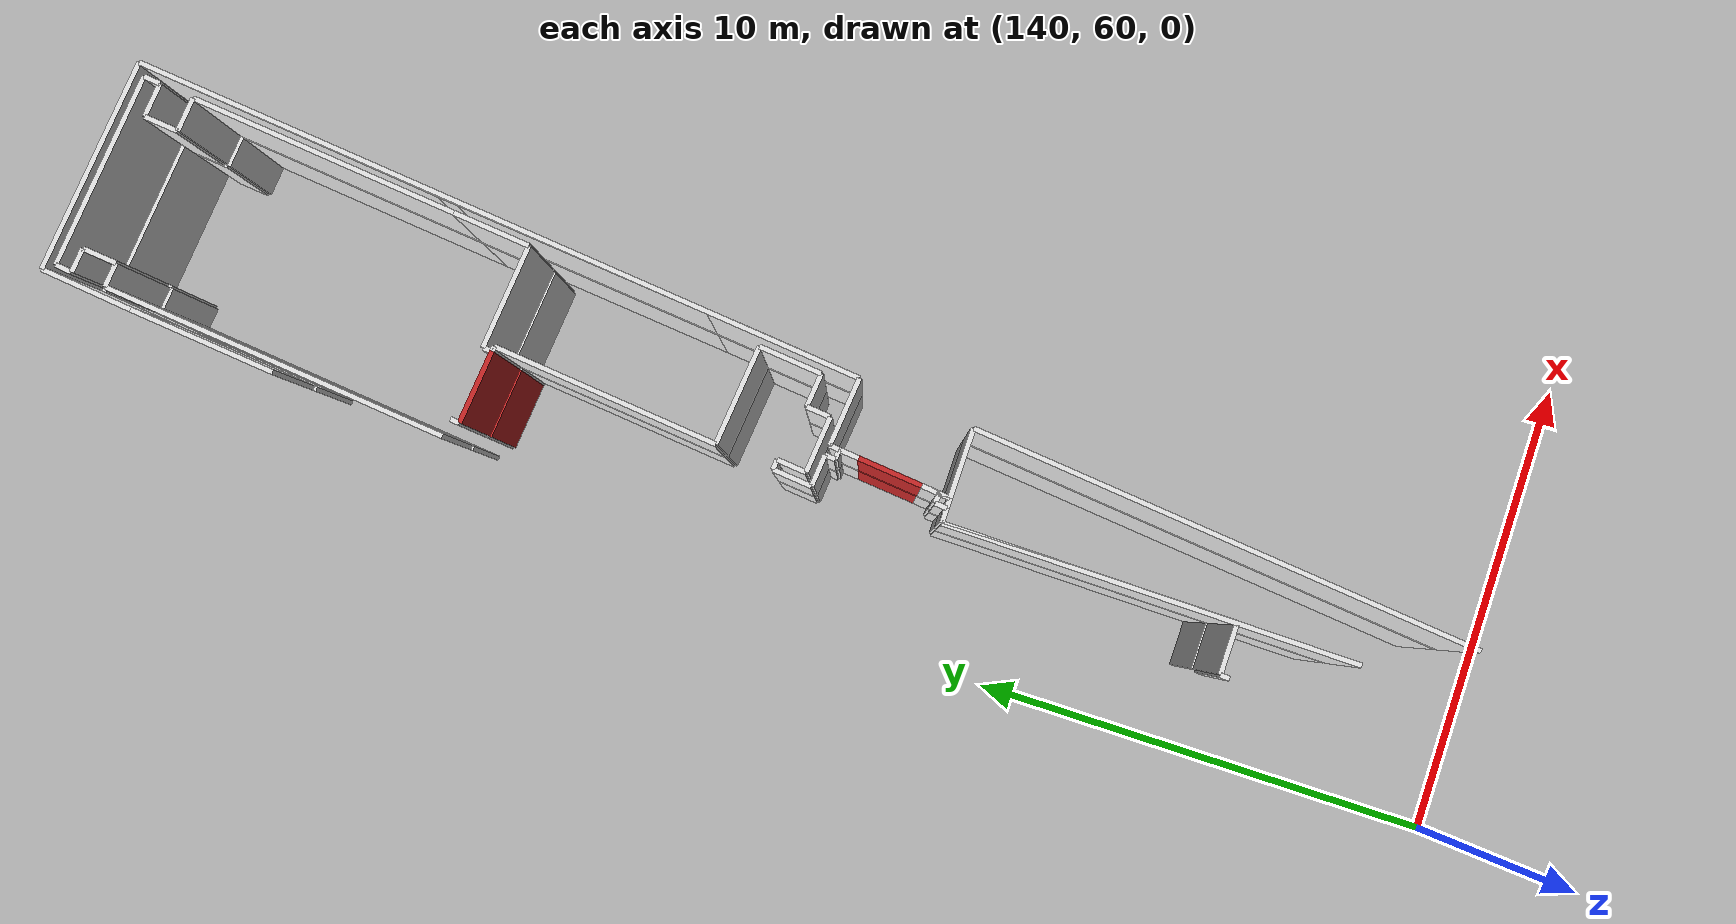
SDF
<sdf version="1.6">
 <world name="default">
  <model name="wall_142.5_81.3_0.0">
   <static>true</static>
   <pose>142.54999999998836 81.33499999996275 1.5 0 0 -0.09966865273705577</pose>
   <link name="link">
    <visual name="visual">
     <geometry><box><size>1.5074813432052014 0.1 3</size></box></geometry>
     <material>
      <script><uri>file://media/materials/scripts/gazebo.material</uri><name>Gazebo/Red</name></script>
     </material>
    </visual>
   </link>
  </model>
  <model name="wall_143.5_73.3_0.0">
   <static>true</static>
   <pose>143.4550000000163 73.29500000015832 1.5 0 0 1.4718835320591757</pose>
   <link name="link">
    <visual name="visual">
     <geometry><box><size>1.3164345787571878 0.1 3</size></box></geometry>
     <material>
      <script><uri>file://media/materials/scripts/gazebo.material</uri><name>Gazebo/Red</name></script>
     </material>
    </visual>
   </link>
  </model>
  <model name="wall_142.9_75.4_0.0">
   <static>true</static>
   <pose>142.9100000000035 75.42999999993481 1.5 0 0 -0.09966865257760905</pose>
   <link name="link">
    <visual name="visual">
     <geometry><box><size>0.20099751243585498 0.1 3</size></box></geometry>
     <material>
      <script><uri>file://media/materials/scripts/gazebo.material</uri><name>Gazebo/White</name></script>
     </material>
    </visual>
   </link>
  </model>
  <model name="wall_143.0_75.1_0.0">
   <static>true</static>
   <pose>142.98000000001048 75.11999999987893 1.5 0 0 -1.6704649792668482</pose>
   <link name="link">
    <visual name="visual">
     <geometry><box><size>0.6029925373596918 0.1 3</size></box></geometry>
     <material>
      <script><uri>file://media/materials/scripts/gazebo.material</uri><name>Gazebo/White</name></script>
     </material>
    </visual>
   </link>
  </model>
  <model name="wall_143.5_74.8_0.0">
   <static>true</static>
   <pose>143.52499999999418 74.76499999989755 1.5 0 0 -0.09536204679293706</pose>
   <link name="link">
    <visual name="visual">
     <geometry><box><size>1.1552488908849852 0.1 3</size></box></geometry>
     <material>
      <script><uri>file://media/materials/scripts/gazebo.material</uri><name>Gazebo/White</name></script>
     </material>
    </visual>
   </link>
  </model>
  <model name="wall_144.1_75.0_0.0">
   <static>true</static>
   <pose>144.125 74.9550000000745 1.5 0 0 1.469107474983833</pose>
   <link name="link">
    <visual name="visual">
     <geometry><box><size>0.4925444144680799 0.1 3</size></box></geometry>
     <material>
      <script><uri>file://media/materials/scripts/gazebo.material</uri><name>Gazebo/White</name></script>
     </material>
    </visual>
   </link>
  </model>
  <model name="wall_144.5_75.2_0.0">
   <static>true</static>
   <pose>144.49500000002445 75.16500000003725 1.5 0 0 -0.10110337216347741</pose>
   <link name="link">
    <visual name="visual">
     <geometry><box><size>0.6935416354083843 0.1 3</size></box></geometry>
     <material>
      <script><uri>file://media/materials/scripts/gazebo.material</uri><name>Gazebo/White</name></script>
     </material>
    </visual>
   </link>
  </model>
  <model name="wall_144.9_75.8_0.0">
   <static>true</static>
   <pose>144.90499999999884 75.77499999990687 1.5 0 0 1.4703602147900217</pose>
   <link name="link">
    <visual name="visual">
     <geometry><box><size>1.2965338407007314 0.1 3</size></box></geometry>
     <material>
      <script><uri>file://media/materials/scripts/gazebo.material</uri><name>Gazebo/White</name></script>
     </material>
    </visual>
   </link>
  </model>
  <model name="wall_143.9_76.5_0.0">
   <static>true</static>
   <pose>143.94999999998254 76.52499999990687 1.5 0 0 3.039012801188522</pose>
   <link name="link">
    <visual name="visual">
     <geometry><box><size>2.050780339260853 0.1 3</size></box></geometry>
     <material>
      <script><uri>file://media/materials/scripts/gazebo.material</uri><name>Gazebo/White</name></script>
     </material>
    </visual>
   </link>
  </model>
  <model name="wall_143.2_78.9_0.0">
   <static>true</static>
   <pose>143.16500000000815 78.93999999994412 1.5 0 0 1.4694135127045715</pose>
   <link name="link">
    <visual name="visual">
     <geometry><box><size>4.6438453894440865 0.1 3</size></box></geometry>
     <material>
      <script><uri>file://media/materials/scripts/gazebo.material</uri><name>Gazebo/White</name></script>
     </material>
    </visual>
   </link>
  </model>
  <model name="wall_143.4_81.3_0.0">
   <static>true</static>
   <pose>143.35000000000582 81.25499999988824 1.5 0 0 3.041924003346254</pose>
   <link name="link">
    <visual name="visual">
     <geometry><box><size>0.10049875622371936 0.1 3</size></box></geometry>
     <material>
      <script><uri>file://media/materials/scripts/gazebo.material</uri><name>Gazebo/White</name></script>
     </material>
    </visual>
   </link>
  </model>
  <model name="wall_142.2_66.2_0.0">
   <static>true</static>
   <pose>142.2399999999907 66.15500000002794 1.5 0 0 -0.009615088532167242</pose>
   <link name="link">
    <visual name="visual">
     <geometry><box><size>1.0400480758514623 0.1 3</size></box></geometry>
     <material>
      <script><uri>file://media/materials/scripts/gazebo.material</uri><name>Gazebo/White</name></script>
     </material>
    </visual>
   </link>
  </model>
  <model name="wall_142.8_69.1_0.0">
   <static>true</static>
   <pose>142.7950000000128 69.10499999998137 1.5 0 0 1.5589525489794016</pose>
   <link name="link">
    <visual name="visual">
     <geometry><box><size>5.910414537218375 0.1 3</size></box></geometry>
     <material>
      <script><uri>file://media/materials/scripts/gazebo.material</uri><name>Gazebo/White</name></script>
     </material>
    </visual>
   </link>
  </model>
  <model name="wall_143.0_72.1_0.0">
   <static>true</static>
   <pose>142.98000000001048 72.06000000005588 1.5 0 0 0.0</pose>
   <link name="link">
    <visual name="visual">
     <geometry><box><size>0.29999999998835847 0.1 3</size></box></geometry>
     <material>
      <script><uri>file://media/materials/scripts/gazebo.material</uri><name>Gazebo/White</name></script>
     </material>
    </visual>
   </link>
  </model>
  <model name="wall_143.1_72.2_0.0">
   <static>true</static>
   <pose>143.14000000001397 72.17999999993481 1.5 0 0 1.4876550947458824</pose>
   <link name="link">
    <visual name="visual">
     <geometry><box><size>0.24083189133608532 0.1 3</size></box></geometry>
     <material>
      <script><uri>file://media/materials/scripts/gazebo.material</uri><name>Gazebo/White</name></script>
     </material>
    </visual>
   </link>
  </model>
  <model name="wall_143.2_72.3_0.0">
   <static>true</static>
   <pose>143.25 72.28999999980442 1.5 0 0 -0.09966865260642473</pose>
   <link name="link">
    <visual name="visual">
     <geometry><box><size>0.20099751237793617 0.1 3</size></box></geometry>
     <material>
      <script><uri>file://media/materials/scripts/gazebo.material</uri><name>Gazebo/White</name></script>
     </material>
    </visual>
   </link>
  </model>
  <model name="wall_143.4_72.5_0.0">
   <static>true</static>
   <pose>143.36999999999534 72.45999999996275 1.5 0 0 1.460139105621001</pose>
   <link name="link">
    <visual name="visual">
     <geometry><box><size>0.36221540586283607 0.1 3</size></box></geometry>
     <material>
      <script><uri>file://media/materials/scripts/gazebo.material</uri><name>Gazebo/White</name></script>
     </material>
    </visual>
   </link>
  </model>
  <model name="wall_143.5_74.2_0.0">
   <static>true</static>
   <pose>143.54000000000815 74.15500000002794 1.5 0 0 1.4735431285193206</pose>
   <link name="link">
    <visual name="visual">
     <geometry><box><size>0.41194659816373147 0.1 3</size></box></geometry>
     <material>
      <script><uri>file://media/materials/scripts/gazebo.material</uri><name>Gazebo/White</name></script>
     </material>
    </visual>
   </link>
  </model>
  <model name="wall_143.5_74.4_0.0">
   <static>true</static>
   <pose>143.45999999999185 74.36499999999069 1.5 0 0 3.0916342566630535</pose>
   <link name="link">
    <visual name="visual">
     <geometry><box><size>0.20024984396872697 0.1 3</size></box></geometry>
     <material>
      <script><uri>file://media/materials/scripts/gazebo.material</uri><name>Gazebo/White</name></script>
     </material>
    </visual>
   </link>
  </model>
  <model name="wall_143.4_74.5_0.0">
   <static>true</static>
   <pose>143.36999999999534 74.47500000009313 1.5 0 0 1.4758446203474973</pose>
   <link name="link">
    <visual name="visual">
     <geometry><box><size>0.21095023106197072 0.1 3</size></box></geometry>
     <material>
      <script><uri>file://media/materials/scripts/gazebo.material</uri><name>Gazebo/White</name></script>
     </material>
    </visual>
   </link>
  </model>
  <model name="wall_143.1_74.6_0.0">
   <static>true</static>
   <pose>143.05499999999302 74.61000000010245 1.5 0 0 3.0495458046444233</pose>
   <link name="link">
    <visual name="visual">
     <geometry><box><size>0.6527633568430243 0.1 3</size></box></geometry>
     <material>
      <script><uri>file://media/materials/scripts/gazebo.material</uri><name>Gazebo/White</name></script>
     </material>
    </visual>
   </link>
  </model>
  <model name="wall_142.8_75.0_0.0">
   <static>true</static>
   <pose>142.76999999998952 75.04000000003725 1.5 0 0 1.471127674260511</pose>
   <link name="link">
    <visual name="visual">
     <geometry><box><size>0.8039900495059528 0.1 3</size></box></geometry>
     <material>
      <script><uri>file://media/materials/scripts/gazebo.material</uri><name>Gazebo/White</name></script>
     </material>
    </visual>
   </link>
  </model>
  <model name="wall_143.3_81.4_0.0">
   <static>true</static>
   <pose>143.30499999999302 81.35499999998137 1.5 0 0 1.5182132652482727</pose>
   <link name="link">
    <visual name="visual">
     <geometry><box><size>0.19026297631410952 0.1 3</size></box></geometry>
     <material>
      <script><uri>file://media/materials/scripts/gazebo.material</uri><name>Gazebo/White</name></script>
     </material>
    </visual>
   </link>
  </model>
  <model name="wall_144.4_81.3_0.0">
   <static>true</static>
   <pose>144.38000000000466 81.34500000020489 1.5 0 0 -0.0978176596774659</pose>
   <link name="link">
    <visual name="visual">
     <geometry><box><size>2.1502790516684445 0.1 3</size></box></geometry>
     <material>
      <script><uri>file://media/materials/scripts/gazebo.material</uri><name>Gazebo/White</name></script>
     </material>
    </visual>
   </link>
  </model>
  <model name="wall_145.5_82.0_0.0">
   <static>true</static>
   <pose>145.52999999999884 82.03000000002794 1.5 0 0 1.4698745421188324</pose>
   <link name="link">
    <visual name="visual">
     <geometry><box><size>1.5880806020966798 0.1 3</size></box></geometry>
     <material>
      <script><uri>file://media/materials/scripts/gazebo.material</uri><name>Gazebo/White</name></script>
     </material>
    </visual>
   </link>
  </model>
  <model name="wall_145.9_85.6_0.0">
   <static>true</static>
   <pose>145.88999999998487 85.56999999983236 1.5 0 0 1.4693278202361642</pose>
   <link name="link">
    <visual name="visual">
     <geometry><box><size>5.528435583417554 0.1 3</size></box></geometry>
     <material>
      <script><uri>file://media/materials/scripts/gazebo.material</uri><name>Gazebo/White</name></script>
     </material>
    </visual>
   </link>
  </model>
  <model name="wall_145.8_88.4_0.0">
   <static>true</static>
   <pose>145.81999999997788 88.35499999998137 1.5 0 0 3.041924000678746</pose>
   <link name="link">
    <visual name="visual">
     <geometry><box><size>0.7034912935197005 0.1 3</size></box></geometry>
     <material>
      <script><uri>file://media/materials/scripts/gazebo.material</uri><name>Gazebo/White</name></script>
     </material>
    </visual>
   </link>
  </model>
  <model name="wall_145.5_88.7_0.0">
   <static>true</static>
   <pose>145.50499999997555 88.73999999999069 1.5 0 0 1.4711276742543362</pose>
   <link name="link">
    <visual name="visual">
     <geometry><box><size>0.7034912932011471 0.1 3</size></box></geometry>
     <material>
      <script><uri>file://media/materials/scripts/gazebo.material</uri><name>Gazebo/White</name></script>
     </material>
    </visual>
   </link>
  </model>
  <model name="wall_145.9_89.1_0.0">
   <static>true</static>
   <pose>145.88999999998487 89.05499999993481 1.5 0 0 -0.0996686522524036</pose>
   <link name="link">
    <visual name="visual">
     <geometry><box><size>0.7034912934733655 0.1 3</size></box></geometry>
     <material>
      <script><uri>file://media/materials/scripts/gazebo.material</uri><name>Gazebo/White</name></script>
     </material>
    </visual>
   </link>
  </model>
  <model name="wall_146.3_89.2_0.0">
   <static>true</static>
   <pose>146.2600000000093 89.18999999994412 1.5 0 0 1.4536875820691035</pose>
   <link name="link">
    <visual name="visual">
     <geometry><box><size>0.3423448552288355 0.1 3</size></box></geometry>
     <material>
      <script><uri>file://media/materials/scripts/gazebo.material</uri><name>Gazebo/White</name></script>
     </material>
    </visual>
   </link>
  </model>
  <model name="wall_144.3_89.6_0.0">
   <static>true</static>
   <pose>144.2850000000035 89.55999999982305 1.5 0 0 3.041675862170233</pose>
   <link name="link">
    <visual name="visual">
     <geometry><box><size>4.01000000003936 0.1 3</size></box></geometry>
     <material>
      <script><uri>file://media/materials/scripts/gazebo.material</uri><name>Gazebo/White</name></script>
     </material>
    </visual>
   </link>
  </model>
  <model name="wall_142.3_89.6_0.0">
   <static>true</static>
   <pose>142.26999999998952 89.58999999985099 1.5 0 0 -1.6879050713518278</pose>
   <link name="link">
    <visual name="visual">
     <geometry><box><size>0.34234485522203445 0.1 3</size></box></geometry>
     <material>
      <script><uri>file://media/materials/scripts/gazebo.material</uri><name>Gazebo/White</name></script>
     </material>
    </visual>
   </link>
  </model>
  <model name="wall_142.5_89.4_0.0">
   <static>true</static>
   <pose>142.5 89.39500000001863 1.5 0 0 -0.0996686521223214</pose>
   <link name="link">
    <visual name="visual">
     <geometry><box><size>0.5024937810375105 0.1 3</size></box></geometry>
     <material>
      <script><uri>file://media/materials/scripts/gazebo.material</uri><name>Gazebo/White</name></script>
     </material>
    </visual>
   </link>
  </model>
  <model name="wall_142.7_89.0_0.0">
   <static>true</static>
   <pose>142.7149999999965 89.02000000001863 1.5 0 0 -1.6704649792695925</pose>
   <link name="link">
    <visual name="visual">
     <geometry><box><size>0.7034912936644975 0.1 3</size></box></geometry>
     <material>
      <script><uri>file://media/materials/scripts/gazebo.material</uri><name>Gazebo/White</name></script>
     </material>
    </visual>
   </link>
  </model>
  <model name="wall_142.4_88.7_0.0">
   <static>true</static>
   <pose>142.42999999999302 88.69500000006519 1.5 0 0 3.0419240005453703</pose>
   <link name="link">
    <visual name="visual">
     <geometry><box><size>0.5024937810838455 0.1 3</size></box></geometry>
     <material>
      <script><uri>file://media/materials/scripts/gazebo.material</uri><name>Gazebo/White</name></script>
     </material>
    </visual>
   </link>
  </model>
  <model name="wall_141.8_85.2_0.0">
   <static>true</static>
   <pose>141.82000000000698 85.18000000016764 1.5 0 0 -1.6721428300555992</pose>
   <link name="link">
    <visual name="visual">
     <geometry><box><size>7.1165160015990105 0.1 3</size></box></geometry>
     <material>
      <script><uri>file://media/materials/scripts/gazebo.material</uri><name>Gazebo/White</name></script>
     </material>
    </visual>
   </link>
  </model>
  <model name="wall_141.8_81.5_0.0">
   <static>true</static>
   <pose>141.80999999999767 81.50500000012107 1.5 0 0 -1.675673265652709</pose>
   <link name="link">
    <visual name="visual">
     <geometry><box><size>0.19104973169180559 0.1 3</size></box></geometry>
     <material>
      <script><uri>file://media/materials/scripts/gazebo.material</uri><name>Gazebo/White</name></script>
     </material>
    </visual>
   </link>
  </model>
  <model name="wall_141.8_86.6_0.0">
   <static>true</static>
   <pose>141.76999999998952 86.61499999999069 1.5 0 0 1.4707965484838321</pose>
   <link name="link">
    <visual name="visual">
     <geometry><box><size>3.005012478933323 0.1 3</size></box></geometry>
     <material>
      <script><uri>file://media/materials/scripts/gazebo.material</uri><name>Gazebo/White</name></script>
     </material>
    </visual>
   </link>
  </model>
  <model name="wall_144.2_66.8_0.0">
   <static>true</static>
   <pose>144.20999999999185 66.81499999994412 1.5 0 0 1.469706682461873</pose>
   <link name="link">
    <visual name="visual">
     <geometry><box><size>10.503623184591495 0.1 3</size></box></geometry>
     <material>
      <script><uri>file://media/materials/scripts/gazebo.material</uri><name>Gazebo/White</name></script>
     </material>
    </visual>
   </link>
  </model>
  <model name="wall_144.0_72.1_0.0">
   <static>true</static>
   <pose>144.0350000000035 72.05000000004657 1.5 0 0 3.1274092075850195</pose>
   <link name="link">
    <visual name="visual">
     <geometry><box><size>1.4101418368123546 0.1 3</size></box></geometry>
     <material>
      <script><uri>file://media/materials/scripts/gazebo.material</uri><name>Gazebo/White</name></script>
     </material>
    </visual>
   </link>
  </model>
  <model name="wall_143.3_72.2_0.0">
   <static>true</static>
   <pose>143.3399999999965 72.1699999999255 1.5 0 0 1.4801364396657184</pose>
   <link name="link">
    <visual name="visual">
     <geometry><box><size>0.22090722008046232 0.1 3</size></box></geometry>
     <material>
      <script><uri>file://media/materials/scripts/gazebo.material</uri><name>Gazebo/White</name></script>
     </material>
    </visual>
   </link>
  </model>
  <model name="wall_143.6_74.5_0.0">
   <static>true</static>
   <pose>143.57000000000698 74.45499999984168 1.5 0 0 1.4659193879370842</pose>
   <link name="link">
    <visual name="visual">
     <geometry><box><size>0.19104973169180559 0.1 3</size></box></geometry>
     <material>
      <script><uri>file://media/materials/scripts/gazebo.material</uri><name>Gazebo/White</name></script>
     </material>
    </visual>
   </link>
  </model>
  <model name="wall_144.3_74.5_0.0">
   <static>true</static>
   <pose>144.27999999999884 74.47999999998137 1.5 0 0 -0.09966865225652011</pose>
   <link name="link">
    <visual name="visual">
     <geometry><box><size>1.4069825868888122 0.1 3</size></box></geometry>
     <material>
      <script><uri>file://media/materials/scripts/gazebo.material</uri><name>Gazebo/White</name></script>
     </material>
    </visual>
   </link>
  </model>
  <model name="wall_145.1_75.3_0.0">
   <static>true</static>
   <pose>145.06999999997788 75.2750000001397 1.5 0 0 1.4671231190540195</pose>
   <link name="link">
    <visual name="visual">
     <geometry><box><size>1.7393389548713725 0.1 3</size></box></geometry>
     <material>
      <script><uri>file://media/materials/scripts/gazebo.material</uri><name>Gazebo/White</name></script>
     </material>
    </visual>
   </link>
  </model>
  <model name="wall_145.5_79.5_0.0">
   <static>true</static>
   <pose>145.48499999998603 79.46999999997206 1.5 0 0 1.473506851962698</pose>
   <link name="link">
    <visual name="visual">
     <geometry><box><size>6.691644042820307 0.1 3</size></box></geometry>
     <material>
      <script><uri>file://media/materials/scripts/gazebo.material</uri><name>Gazebo/White</name></script>
     </material>
    </visual>
   </link>
  </model>
  <model name="wall_145.8_83.0_0.0">
   <static>true</static>
   <pose>145.8299999999872 83.01000000000931 1.5 0 0 1.4758446205894842</pose>
   <link name="link">
    <visual name="visual">
     <geometry><box><size>0.42190046258198655 0.1 3</size></box></geometry>
     <material>
      <script><uri>file://media/materials/scripts/gazebo.material</uri><name>Gazebo/White</name></script>
     </material>
    </visual>
   </link>
  </model>
  <model name="wall_146.2_86.4_0.0">
   <static>true</static>
   <pose>146.17999999999302 86.38000000012107 1.5 0 0 1.4667431110995115</pose>
   <link name="link">
    <visual name="visual">
     <geometry><box><size>6.354368575863701 0.1 3</size></box></geometry>
     <material>
      <script><uri>file://media/materials/scripts/gazebo.material</uri><name>Gazebo/White</name></script>
     </material>
    </visual>
   </link>
  </model>
  <model name="wall_144.3_89.8_0.0">
   <static>true</static>
   <pose>144.32000000000698 89.76500000013039 1.5 0 0 3.0392121432977204</pose>
   <link name="link">
    <visual name="visual">
     <geometry><box><size>4.403055757108741 0.1 3</size></box></geometry>
     <material>
      <script><uri>file://media/materials/scripts/gazebo.material</uri><name>Gazebo/White</name></script>
     </material>
    </visual>
   </link>
  </model>
  <model name="wall_142.0_89.1_0.0">
   <static>true</static>
   <pose>142.02499999999418 89.05000000004657 1.5 0 0 -1.682037319054423</pose>
   <link name="link">
    <visual name="visual">
     <geometry><box><size>1.8916923643498365 0.1 3</size></box></geometry>
     <material>
      <script><uri>file://media/materials/scripts/gazebo.material</uri><name>Gazebo/White</name></script>
     </material>
    </visual>
   </link>
  </model>
  <model name="wall_145.7_82.0_0.0">
   <static>true</static>
   <pose>145.74499999999534 81.97500000009313 1.5 0 0 -1.6715773258821318</pose>
   <link name="link">
    <visual name="visual">
     <geometry><box><size>15.2071627858948 0.1 3</size></box></geometry>
     <material>
      <script><uri>file://media/materials/scripts/gazebo.material</uri><name>Gazebo/White</name></script>
     </material>
    </visual>
   </link>
  </model>
  <model name="wall_143.4_72.4_0.0">
   <static>true</static>
   <pose>143.36000000001513 72.35000000009313 1.5 0 0 -1.673877935300477</pose>
   <link name="link">
    <visual name="visual">
     <geometry><box><size>0.5830951895584008 0.1 3</size></box></geometry>
     <material>
      <script><uri>file://media/materials/scripts/gazebo.material</uri><name>Gazebo/White</name></script>
     </material>
    </visual>
   </link>
  </model>
  <model name="wall_143.1_72.1_0.0">
   <static>true</static>
   <pose>143.0800000000163 72.06000000005588 1.5 0 0 3.141592653589793</pose>
   <link name="link">
    <visual name="visual">
     <geometry><box><size>0.5 0.1 3</size></box></geometry>
     <material>
      <script><uri>file://media/materials/scripts/gazebo.material</uri><name>Gazebo/White</name></script>
     </material>
    </visual>
   </link>
  </model>
  <model name="wall_142.8_67.9_0.0">
   <static>true</static>
   <pose>142.77499999999418 67.86000000010245 1.5 0 0 -1.5838908164257817</pose>
   <link name="link">
    <visual name="visual">
     <geometry><box><size>8.400720207127787 0.1 3</size></box></geometry>
     <material>
      <script><uri>file://media/materials/scripts/gazebo.material</uri><name>Gazebo/White</name></script>
     </material>
    </visual>
   </link>
  </model>
  <model name="wall_142.5_81.3_3.2">
   <static>true</static>
   <pose>142.54999999998836 81.33499999996275 4.7 0 0 -0.09966865273705577</pose>
   <link name="link">
    <visual name="visual">
     <geometry><box><size>1.5074813432052014 0.1 3</size></box></geometry>
     <material>
      <script><uri>file://media/materials/scripts/gazebo.material</uri><name>Gazebo/Red</name></script>
     </material>
    </visual>
   </link>
  </model>
  <model name="wall_143.5_73.3_3.2">
   <static>true</static>
   <pose>143.4550000000163 73.29500000015832 4.7 0 0 1.4718835320591757</pose>
   <link name="link">
    <visual name="visual">
     <geometry><box><size>1.3164345787571878 0.1 3</size></box></geometry>
     <material>
      <script><uri>file://media/materials/scripts/gazebo.material</uri><name>Gazebo/Red</name></script>
     </material>
    </visual>
   </link>
  </model>
  <model name="wall_142.9_75.4_3.2">
   <static>true</static>
   <pose>142.9100000000035 75.42999999993481 4.7 0 0 -0.09966865257760905</pose>
   <link name="link">
    <visual name="visual">
     <geometry><box><size>0.20099751243585498 0.1 3</size></box></geometry>
     <material>
      <script><uri>file://media/materials/scripts/gazebo.material</uri><name>Gazebo/White</name></script>
     </material>
    </visual>
   </link>
  </model>
  <model name="wall_143.0_75.1_3.2">
   <static>true</static>
   <pose>142.98000000001048 75.11999999987893 4.7 0 0 -1.6704649792668482</pose>
   <link name="link">
    <visual name="visual">
     <geometry><box><size>0.6029925373596918 0.1 3</size></box></geometry>
     <material>
      <script><uri>file://media/materials/scripts/gazebo.material</uri><name>Gazebo/White</name></script>
     </material>
    </visual>
   </link>
  </model>
  <model name="wall_143.5_74.8_3.2">
   <static>true</static>
   <pose>143.52499999999418 74.76499999989755 4.7 0 0 -0.09536204679293706</pose>
   <link name="link">
    <visual name="visual">
     <geometry><box><size>1.1552488908849852 0.1 3</size></box></geometry>
     <material>
      <script><uri>file://media/materials/scripts/gazebo.material</uri><name>Gazebo/White</name></script>
     </material>
    </visual>
   </link>
  </model>
  <model name="wall_144.1_75.0_3.2">
   <static>true</static>
   <pose>144.125 74.9550000000745 4.7 0 0 1.469107474983833</pose>
   <link name="link">
    <visual name="visual">
     <geometry><box><size>0.4925444144680799 0.1 3</size></box></geometry>
     <material>
      <script><uri>file://media/materials/scripts/gazebo.material</uri><name>Gazebo/White</name></script>
     </material>
    </visual>
   </link>
  </model>
  <model name="wall_144.5_75.2_3.2">
   <static>true</static>
   <pose>144.49500000002445 75.16500000003725 4.7 0 0 -0.10110337216347741</pose>
   <link name="link">
    <visual name="visual">
     <geometry><box><size>0.6935416354083843 0.1 3</size></box></geometry>
     <material>
      <script><uri>file://media/materials/scripts/gazebo.material</uri><name>Gazebo/White</name></script>
     </material>
    </visual>
   </link>
  </model>
  <model name="wall_144.9_75.8_3.2">
   <static>true</static>
   <pose>144.90499999999884 75.77499999990687 4.7 0 0 1.4703602147900217</pose>
   <link name="link">
    <visual name="visual">
     <geometry><box><size>1.2965338407007314 0.1 3</size></box></geometry>
     <material>
      <script><uri>file://media/materials/scripts/gazebo.material</uri><name>Gazebo/White</name></script>
     </material>
    </visual>
   </link>
  </model>
  <model name="wall_143.9_76.5_3.2">
   <static>true</static>
   <pose>143.94999999998254 76.52499999990687 4.7 0 0 3.039012801188522</pose>
   <link name="link">
    <visual name="visual">
     <geometry><box><size>2.050780339260853 0.1 3</size></box></geometry>
     <material>
      <script><uri>file://media/materials/scripts/gazebo.material</uri><name>Gazebo/White</name></script>
     </material>
    </visual>
   </link>
  </model>
  <model name="wall_143.2_78.9_3.2">
   <static>true</static>
   <pose>143.16500000000815 78.93999999994412 4.7 0 0 1.4694135127045715</pose>
   <link name="link">
    <visual name="visual">
     <geometry><box><size>4.6438453894440865 0.1 3</size></box></geometry>
     <material>
      <script><uri>file://media/materials/scripts/gazebo.material</uri><name>Gazebo/White</name></script>
     </material>
    </visual>
   </link>
  </model>
  <model name="wall_143.4_81.3_3.2">
   <static>true</static>
   <pose>143.35000000000582 81.25499999988824 4.7 0 0 3.041924003346254</pose>
   <link name="link">
    <visual name="visual">
     <geometry><box><size>0.10049875622371936 0.1 3</size></box></geometry>
     <material>
      <script><uri>file://media/materials/scripts/gazebo.material</uri><name>Gazebo/White</name></script>
     </material>
    </visual>
   </link>
  </model>
  <model name="wall_141.7_66.1_3.2">
   <static>true</static>
   <pose>141.7149999999965 66.06500000017695 4.7 0 0 1.5182132654251468</pose>
   <link name="link">
    <visual name="visual">
     <geometry><box><size>0.19026297584603252 0.1 3</size></box></geometry>
     <material>
      <script><uri>file://media/materials/scripts/gazebo.material</uri><name>Gazebo/White</name></script>
     </material>
    </visual>
   </link>
  </model>
  <model name="wall_142.2_66.2_3.2">
   <static>true</static>
   <pose>142.2399999999907 66.15500000002794 4.7 0 0 -0.009615088532167242</pose>
   <link name="link">
    <visual name="visual">
     <geometry><box><size>1.0400480758514623 0.1 3</size></box></geometry>
     <material>
      <script><uri>file://media/materials/scripts/gazebo.material</uri><name>Gazebo/White</name></script>
     </material>
    </visual>
   </link>
  </model>
  <model name="wall_142.8_69.1_3.2">
   <static>true</static>
   <pose>142.7950000000128 69.10499999998137 4.7 0 0 1.5589525489794016</pose>
   <link name="link">
    <visual name="visual">
     <geometry><box><size>5.910414537218375 0.1 3</size></box></geometry>
     <material>
      <script><uri>file://media/materials/scripts/gazebo.material</uri><name>Gazebo/White</name></script>
     </material>
    </visual>
   </link>
  </model>
  <model name="wall_143.0_72.1_3.2">
   <static>true</static>
   <pose>142.98000000001048 72.06000000005588 4.7 0 0 0.0</pose>
   <link name="link">
    <visual name="visual">
     <geometry><box><size>0.29999999998835847 0.1 3</size></box></geometry>
     <material>
      <script><uri>file://media/materials/scripts/gazebo.material</uri><name>Gazebo/White</name></script>
     </material>
    </visual>
   </link>
  </model>
  <model name="wall_143.1_72.2_3.2">
   <static>true</static>
   <pose>143.14000000001397 72.17999999993481 4.7 0 0 1.4876550947458824</pose>
   <link name="link">
    <visual name="visual">
     <geometry><box><size>0.24083189133608532 0.1 3</size></box></geometry>
     <material>
      <script><uri>file://media/materials/scripts/gazebo.material</uri><name>Gazebo/White</name></script>
     </material>
    </visual>
   </link>
  </model>
  <model name="wall_143.2_72.3_3.2">
   <static>true</static>
   <pose>143.25 72.28999999980442 4.7 0 0 -0.09966865260642473</pose>
   <link name="link">
    <visual name="visual">
     <geometry><box><size>0.20099751237793617 0.1 3</size></box></geometry>
     <material>
      <script><uri>file://media/materials/scripts/gazebo.material</uri><name>Gazebo/White</name></script>
     </material>
    </visual>
   </link>
  </model>
  <model name="wall_143.4_72.5_3.2">
   <static>true</static>
   <pose>143.36999999999534 72.45999999996275 4.7 0 0 1.460139105621001</pose>
   <link name="link">
    <visual name="visual">
     <geometry><box><size>0.36221540586283607 0.1 3</size></box></geometry>
     <material>
      <script><uri>file://media/materials/scripts/gazebo.material</uri><name>Gazebo/White</name></script>
     </material>
    </visual>
   </link>
  </model>
  <model name="wall_143.5_74.2_3.2">
   <static>true</static>
   <pose>143.54000000000815 74.15500000002794 4.7 0 0 1.4735431285193206</pose>
   <link name="link">
    <visual name="visual">
     <geometry><box><size>0.41194659816373147 0.1 3</size></box></geometry>
     <material>
      <script><uri>file://media/materials/scripts/gazebo.material</uri><name>Gazebo/White</name></script>
     </material>
    </visual>
   </link>
  </model>
  <model name="wall_143.5_74.4_3.2">
   <static>true</static>
   <pose>143.45999999999185 74.36499999999069 4.7 0 0 3.0916342566630535</pose>
   <link name="link">
    <visual name="visual">
     <geometry><box><size>0.20024984396872697 0.1 3</size></box></geometry>
     <material>
      <script><uri>file://media/materials/scripts/gazebo.material</uri><name>Gazebo/White</name></script>
     </material>
    </visual>
   </link>
  </model>
  <model name="wall_143.4_74.5_3.2">
   <static>true</static>
   <pose>143.36999999999534 74.47500000009313 4.7 0 0 1.4758446203474973</pose>
   <link name="link">
    <visual name="visual">
     <geometry><box><size>0.21095023106197072 0.1 3</size></box></geometry>
     <material>
      <script><uri>file://media/materials/scripts/gazebo.material</uri><name>Gazebo/White</name></script>
     </material>
    </visual>
   </link>
  </model>
  <model name="wall_143.1_74.6_3.2">
   <static>true</static>
   <pose>143.05499999999302 74.61000000010245 4.7 0 0 3.0495458046444233</pose>
   <link name="link">
    <visual name="visual">
     <geometry><box><size>0.6527633568430243 0.1 3</size></box></geometry>
     <material>
      <script><uri>file://media/materials/scripts/gazebo.material</uri><name>Gazebo/White</name></script>
     </material>
    </visual>
   </link>
  </model>
  <model name="wall_142.8_75.0_3.2">
   <static>true</static>
   <pose>142.76999999998952 75.04000000003725 4.7 0 0 1.471127674260511</pose>
   <link name="link">
    <visual name="visual">
     <geometry><box><size>0.8039900495059528 0.1 3</size></box></geometry>
     <material>
      <script><uri>file://media/materials/scripts/gazebo.material</uri><name>Gazebo/White</name></script>
     </material>
    </visual>
   </link>
  </model>
  <model name="wall_143.3_81.4_3.2">
   <static>true</static>
   <pose>143.30499999999302 81.35499999998137 4.7 0 0 1.5182132652482727</pose>
   <link name="link">
    <visual name="visual">
     <geometry><box><size>0.19026297631410952 0.1 3</size></box></geometry>
     <material>
      <script><uri>file://media/materials/scripts/gazebo.material</uri><name>Gazebo/White</name></script>
     </material>
    </visual>
   </link>
  </model>
  <model name="wall_144.4_81.3_3.2">
   <static>true</static>
   <pose>144.38000000000466 81.34500000020489 4.7 0 0 -0.0978176596774659</pose>
   <link name="link">
    <visual name="visual">
     <geometry><box><size>2.1502790516684445 0.1 3</size></box></geometry>
     <material>
      <script><uri>file://media/materials/scripts/gazebo.material</uri><name>Gazebo/White</name></script>
     </material>
    </visual>
   </link>
  </model>
  <model name="wall_145.5_82.0_3.2">
   <static>true</static>
   <pose>145.52999999999884 82.03000000002794 4.7 0 0 1.4698745421188324</pose>
   <link name="link">
    <visual name="visual">
     <geometry><box><size>1.5880806020966798 0.1 3</size></box></geometry>
     <material>
      <script><uri>file://media/materials/scripts/gazebo.material</uri><name>Gazebo/White</name></script>
     </material>
    </visual>
   </link>
  </model>
  <model name="wall_145.9_85.6_3.2">
   <static>true</static>
   <pose>145.88999999998487 85.56999999983236 4.7 0 0 1.4693278202361642</pose>
   <link name="link">
    <visual name="visual">
     <geometry><box><size>5.528435583417554 0.1 3</size></box></geometry>
     <material>
      <script><uri>file://media/materials/scripts/gazebo.material</uri><name>Gazebo/White</name></script>
     </material>
    </visual>
   </link>
  </model>
  <model name="wall_145.8_88.4_3.2">
   <static>true</static>
   <pose>145.81999999997788 88.35499999998137 4.7 0 0 3.041924000678746</pose>
   <link name="link">
    <visual name="visual">
     <geometry><box><size>0.7034912935197005 0.1 3</size></box></geometry>
     <material>
      <script><uri>file://media/materials/scripts/gazebo.material</uri><name>Gazebo/White</name></script>
     </material>
    </visual>
   </link>
  </model>
  <model name="wall_145.5_88.7_3.2">
   <static>true</static>
   <pose>145.50499999997555 88.73999999999069 4.7 0 0 1.4711276742543362</pose>
   <link name="link">
    <visual name="visual">
     <geometry><box><size>0.7034912932011471 0.1 3</size></box></geometry>
     <material>
      <script><uri>file://media/materials/scripts/gazebo.material</uri><name>Gazebo/White</name></script>
     </material>
    </visual>
   </link>
  </model>
  <model name="wall_145.9_89.1_3.2">
   <static>true</static>
   <pose>145.88999999998487 89.05499999993481 4.7 0 0 -0.0996686522524036</pose>
   <link name="link">
    <visual name="visual">
     <geometry><box><size>0.7034912934733655 0.1 3</size></box></geometry>
     <material>
      <script><uri>file://media/materials/scripts/gazebo.material</uri><name>Gazebo/White</name></script>
     </material>
    </visual>
   </link>
  </model>
  <model name="wall_146.3_89.2_3.2">
   <static>true</static>
   <pose>146.2600000000093 89.18999999994412 4.7 0 0 1.4536875820691035</pose>
   <link name="link">
    <visual name="visual">
     <geometry><box><size>0.3423448552288355 0.1 3</size></box></geometry>
     <material>
      <script><uri>file://media/materials/scripts/gazebo.material</uri><name>Gazebo/White</name></script>
     </material>
    </visual>
   </link>
  </model>
  <model name="wall_144.3_89.6_3.2">
   <static>true</static>
   <pose>144.2850000000035 89.55999999982305 4.7 0 0 3.041675862170233</pose>
   <link name="link">
    <visual name="visual">
     <geometry><box><size>4.01000000003936 0.1 3</size></box></geometry>
     <material>
      <script><uri>file://media/materials/scripts/gazebo.material</uri><name>Gazebo/White</name></script>
     </material>
    </visual>
   </link>
  </model>
  <model name="wall_142.3_89.6_3.2">
   <static>true</static>
   <pose>142.26999999998952 89.58999999985099 4.7 0 0 -1.6879050713518278</pose>
   <link name="link">
    <visual name="visual">
     <geometry><box><size>0.34234485522203445 0.1 3</size></box></geometry>
     <material>
      <script><uri>file://media/materials/scripts/gazebo.material</uri><name>Gazebo/White</name></script>
     </material>
    </visual>
   </link>
  </model>
  <model name="wall_142.5_89.4_3.2">
   <static>true</static>
   <pose>142.5 89.39500000001863 4.7 0 0 -0.0996686521223214</pose>
   <link name="link">
    <visual name="visual">
     <geometry><box><size>0.5024937810375105 0.1 3</size></box></geometry>
     <material>
      <script><uri>file://media/materials/scripts/gazebo.material</uri><name>Gazebo/White</name></script>
     </material>
    </visual>
   </link>
  </model>
  <model name="wall_142.7_89.0_3.2">
   <static>true</static>
   <pose>142.7149999999965 89.02000000001863 4.7 0 0 -1.6704649792695925</pose>
   <link name="link">
    <visual name="visual">
     <geometry><box><size>0.7034912936644975 0.1 3</size></box></geometry>
     <material>
      <script><uri>file://media/materials/scripts/gazebo.material</uri><name>Gazebo/White</name></script>
     </material>
    </visual>
   </link>
  </model>
  <model name="wall_142.4_88.7_3.2">
   <static>true</static>
   <pose>142.42999999999302 88.69500000006519 4.7 0 0 3.0419240005453703</pose>
   <link name="link">
    <visual name="visual">
     <geometry><box><size>0.5024937810838455 0.1 3</size></box></geometry>
     <material>
      <script><uri>file://media/materials/scripts/gazebo.material</uri><name>Gazebo/White</name></script>
     </material>
    </visual>
   </link>
  </model>
  <model name="wall_141.8_85.2_3.2">
   <static>true</static>
   <pose>141.82000000000698 85.18000000016764 4.7 0 0 -1.6721428300555992</pose>
   <link name="link">
    <visual name="visual">
     <geometry><box><size>7.1165160015990105 0.1 3</size></box></geometry>
     <material>
      <script><uri>file://media/materials/scripts/gazebo.material</uri><name>Gazebo/White</name></script>
     </material>
    </visual>
   </link>
  </model>
  <model name="wall_141.8_81.5_3.2">
   <static>true</static>
   <pose>141.80999999999767 81.50500000012107 4.7 0 0 -1.675673265652709</pose>
   <link name="link">
    <visual name="visual">
     <geometry><box><size>0.19104973169180559 0.1 3</size></box></geometry>
     <material>
      <script><uri>file://media/materials/scripts/gazebo.material</uri><name>Gazebo/White</name></script>
     </material>
    </visual>
   </link>
  </model>
  <model name="wall_141.8_86.6_3.2">
   <static>true</static>
   <pose>141.76999999998952 86.61499999999069 4.7 0 0 1.4707965484838321</pose>
   <link name="link">
    <visual name="visual">
     <geometry><box><size>3.005012478933323 0.1 3</size></box></geometry>
     <material>
      <script><uri>file://media/materials/scripts/gazebo.material</uri><name>Gazebo/White</name></script>
     </material>
    </visual>
   </link>
  </model>
  <model name="wall_144.2_66.8_3.2">
   <static>true</static>
   <pose>144.20999999999185 66.81499999994412 4.7 0 0 1.469706682461873</pose>
   <link name="link">
    <visual name="visual">
     <geometry><box><size>10.503623184591495 0.1 3</size></box></geometry>
     <material>
      <script><uri>file://media/materials/scripts/gazebo.material</uri><name>Gazebo/White</name></script>
     </material>
    </visual>
   </link>
  </model>
  <model name="wall_144.0_72.1_3.2">
   <static>true</static>
   <pose>144.0350000000035 72.05000000004657 4.7 0 0 3.1274092075850195</pose>
   <link name="link">
    <visual name="visual">
     <geometry><box><size>1.4101418368123546 0.1 3</size></box></geometry>
     <material>
      <script><uri>file://media/materials/scripts/gazebo.material</uri><name>Gazebo/White</name></script>
     </material>
    </visual>
   </link>
  </model>
  <model name="wall_143.3_72.2_3.2">
   <static>true</static>
   <pose>143.3399999999965 72.1699999999255 4.7 0 0 1.4801364396657184</pose>
   <link name="link">
    <visual name="visual">
     <geometry><box><size>0.22090722008046232 0.1 3</size></box></geometry>
     <material>
      <script><uri>file://media/materials/scripts/gazebo.material</uri><name>Gazebo/White</name></script>
     </material>
    </visual>
   </link>
  </model>
  <model name="wall_143.6_74.5_3.2">
   <static>true</static>
   <pose>143.57000000000698 74.45499999984168 4.7 0 0 1.4659193879370842</pose>
   <link name="link">
    <visual name="visual">
     <geometry><box><size>0.19104973169180559 0.1 3</size></box></geometry>
     <material>
      <script><uri>file://media/materials/scripts/gazebo.material</uri><name>Gazebo/White</name></script>
     </material>
    </visual>
   </link>
  </model>
  <model name="wall_144.3_74.5_3.2">
   <static>true</static>
   <pose>144.27999999999884 74.47999999998137 4.7 0 0 -0.09966865225652011</pose>
   <link name="link">
    <visual name="visual">
     <geometry><box><size>1.4069825868888122 0.1 3</size></box></geometry>
     <material>
      <script><uri>file://media/materials/scripts/gazebo.material</uri><name>Gazebo/White</name></script>
     </material>
    </visual>
   </link>
  </model>
  <model name="wall_145.1_75.3_3.2">
   <static>true</static>
   <pose>145.06999999997788 75.2750000001397 4.7 0 0 1.4671231190540195</pose>
   <link name="link">
    <visual name="visual">
     <geometry><box><size>1.7393389548713725 0.1 3</size></box></geometry>
     <material>
      <script><uri>file://media/materials/scripts/gazebo.material</uri><name>Gazebo/White</name></script>
     </material>
    </visual>
   </link>
  </model>
  <model name="wall_145.5_79.5_3.2">
   <static>true</static>
   <pose>145.48499999998603 79.46999999997206 4.7 0 0 1.473506851962698</pose>
   <link name="link">
    <visual name="visual">
     <geometry><box><size>6.691644042820307 0.1 3</size></box></geometry>
     <material>
      <script><uri>file://media/materials/scripts/gazebo.material</uri><name>Gazebo/White</name></script>
     </material>
    </visual>
   </link>
  </model>
  <model name="wall_145.8_83.0_3.2">
   <static>true</static>
   <pose>145.8299999999872 83.01000000000931 4.7 0 0 1.4758446205894842</pose>
   <link name="link">
    <visual name="visual">
     <geometry><box><size>0.42190046258198655 0.1 3</size></box></geometry>
     <material>
      <script><uri>file://media/materials/scripts/gazebo.material</uri><name>Gazebo/White</name></script>
     </material>
    </visual>
   </link>
  </model>
  <model name="wall_146.2_86.4_3.2">
   <static>true</static>
   <pose>146.17999999999302 86.38000000012107 4.7 0 0 1.4667431110995115</pose>
   <link name="link">
    <visual name="visual">
     <geometry><box><size>6.354368575863701 0.1 3</size></box></geometry>
     <material>
      <script><uri>file://media/materials/scripts/gazebo.material</uri><name>Gazebo/White</name></script>
     </material>
    </visual>
   </link>
  </model>
  <model name="wall_144.3_89.8_3.2">
   <static>true</static>
   <pose>144.32000000000698 89.76500000013039 4.7 0 0 3.0392121432977204</pose>
   <link name="link">
    <visual name="visual">
     <geometry><box><size>4.403055757108741 0.1 3</size></box></geometry>
     <material>
      <script><uri>file://media/materials/scripts/gazebo.material</uri><name>Gazebo/White</name></script>
     </material>
    </visual>
   </link>
  </model>
  <model name="wall_142.0_89.1_3.2">
   <static>true</static>
   <pose>142.02499999999418 89.05000000004657 4.7 0 0 -1.682037319054423</pose>
   <link name="link">
    <visual name="visual">
     <geometry><box><size>1.8916923643498365 0.1 3</size></box></geometry>
     <material>
      <script><uri>file://media/materials/scripts/gazebo.material</uri><name>Gazebo/White</name></script>
     </material>
    </visual>
   </link>
  </model>
  <model name="wall_145.7_82.0_3.2">
   <static>true</static>
   <pose>145.74499999999534 81.97500000009313 4.7 0 0 -1.6715773258821318</pose>
   <link name="link">
    <visual name="visual">
     <geometry><box><size>15.2071627858948 0.1 3</size></box></geometry>
     <material>
      <script><uri>file://media/materials/scripts/gazebo.material</uri><name>Gazebo/White</name></script>
     </material>
    </visual>
   </link>
  </model>
  <model name="wall_143.4_72.4_3.2">
   <static>true</static>
   <pose>143.36000000001513 72.35000000009313 4.7 0 0 -1.673877935300477</pose>
   <link name="link">
    <visual name="visual">
     <geometry><box><size>0.5830951895584008 0.1 3</size></box></geometry>
     <material>
      <script><uri>file://media/materials/scripts/gazebo.material</uri><name>Gazebo/White</name></script>
     </material>
    </visual>
   </link>
  </model>
  <model name="wall_143.1_72.1_3.2">
   <static>true</static>
   <pose>143.0800000000163 72.06000000005588 4.7 0 0 3.141592653589793</pose>
   <link name="link">
    <visual name="visual">
     <geometry><box><size>0.5 0.1 3</size></box></geometry>
     <material>
      <script><uri>file://media/materials/scripts/gazebo.material</uri><name>Gazebo/White</name></script>
     </material>
    </visual>
   </link>
  </model>
  <model name="wall_142.8_67.9_3.2">
   <static>true</static>
   <pose>142.77499999999418 67.86000000010245 4.7 0 0 -1.5838908164257817</pose>
   <link name="link">
    <visual name="visual">
     <geometry><box><size>8.400720207127787 0.1 3</size></box></geometry>
     <material>
      <script><uri>file://media/materials/scripts/gazebo.material</uri><name>Gazebo/White</name></script>
     </material>
    </visual>
   </link>
  </model>
 </world>
</sdf>
